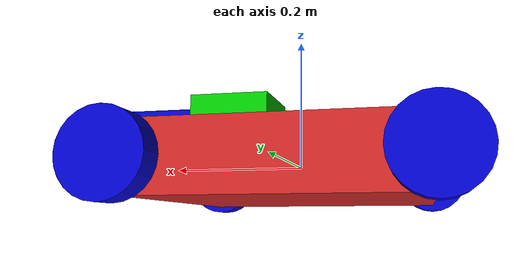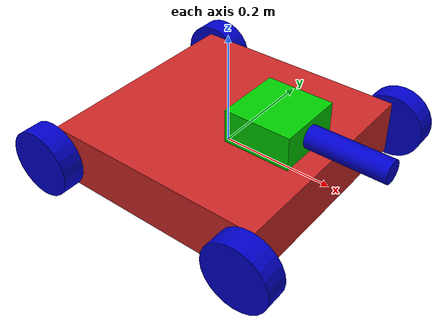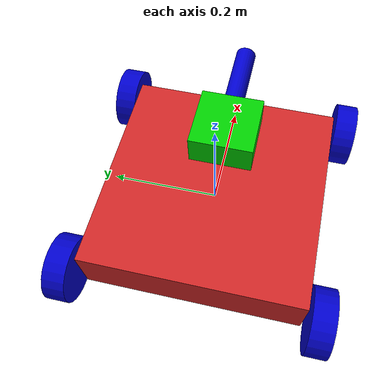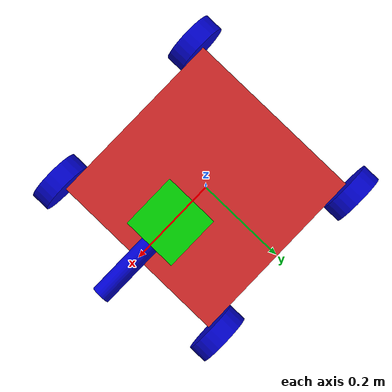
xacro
<?xml version="1.0"?>
<robot xmlns:xacro="http://www.ros.org/wiki/xacro" name="mobile_robot">

<!-- Base Link -->
<link name="base_link">
</link>

<xacro:property name="height" value="0.4" />
<xacro:property name="width" value="0.4" />
<xacro:property name="depth" value="0.1" />

<!--Chassis-->
<link name="chassis">
  <visual>
    <geometry>
      <box size="${height} ${width} ${depth}"/>
    </geometry>
  </visual>
  <collision>
    <geometry>
      <box size="${height} ${width} ${depth}"/>
    </geometry>
  </collision>
  <inertial>
    <mass value="1.0"/> <!-- [kg] -->
    <inertia ixx="0.014167" ixy="0.0" ixz="0.0" iyy="0.026667" iyz="0.0" izz="0.014167"/>
  </inertial>
</link>

<gazebo reference="chassis">
  <material>Gazebo/Red</material>
</gazebo>

<joint name="chassis_joint" type="fixed">
  <parent link="base_link"/>
  <child link="chassis"/>
</joint>

<material name="blue">
    <color rgba="0 0 0.8 1"/>
</material>

<xacro:property name="wheel_height" value="0.04" />
<xacro:property name="wheel_radius" value="0.06" />

<!-- Wheel macro-->
<xacro:macro name="wheel" params="name reflect_x reflect_y reflect_r reflect_axis">

  <!-- Wheel link -->
	<link name="${name}_wheel">
    <visual>
      <geometry>
        <cylinder length="${wheel_height}" radius="${wheel_radius}"/>
      </geometry>
      <material name="blue"/>
    </visual>
    <collision>
      <geometry>
        <cylinder length="${wheel_height}" radius="${wheel_radius}"/>
      </geometry>
    </collision>
    <inertial>
      <mass value="0.3"/>  <!-- [kg] -->
      <inertia ixx="0.00031" ixy="0.0" ixz="0.0" iyy="0.00031" iyz="0.0" izz="0.00054"/>
    </inertial>
  </link>

  <!-- Wheel joint -->
  <joint name="${name}_wheel_joint" type="continuous">
    <parent link="chassis"/>
    <child link="${name}_wheel"/>
    <origin xyz="${reflect_x*height/2} ${reflect_y*(width/2+0.025)} 0" rpy="${reflect_r*1.5707} 0 0"/>
    <axis xyz="0 0 ${reflect_axis}"/>
  </joint>

  <!-- Adding transmission to wheels -->
  <transmission name="${name}_wheel_trans">
    <type>transmission_interface/SimpleTransmission</type>
    <actuator name="${name}_wheel_motor">
      <mechanicalReduction>1</mechanicalReduction>
    </actuator>
    <joint name="${name}_wheel_joint">
      <hardwareInterface>hardware_interface/VelocityJointInterface</hardwareInterface>
    </joint>
  </transmission>

  <gazebo reference="${name}_wheel">
    <material>Gazebo/Blue</material>
  </gazebo>

</xacro:macro>

<!-- Wheels definition-->
<xacro:wheel name="front_right" reflect_x="1" reflect_y="-1" reflect_r="1" reflect_axis="-1"/>
<xacro:wheel name="front_left" reflect_x="1" reflect_y="1" reflect_r="-1" reflect_axis="1"/>
<xacro:wheel name="rear_right" reflect_x="-1" reflect_y="-1" reflect_r="1" reflect_axis="-1"/>
<xacro:wheel name="rear_left" reflect_x="-1" reflect_y="1" reflect_r="-1" reflect_axis="1"/>

<!-- Head box -->
<material name="green">
  <color rgba="0 0.8 0 1"/>
</material>

<link name="head">
  <visual>
    <geometry>
      <box size="0.12 0.12 0.12"/>
    </geometry>
    <material name="green"/>
  </visual>
</link>

<joint name="head_joint" type="fixed">
  <parent link="chassis"/>
  <child link="head"/>
  <origin xyz="0.1 0 0.05" rpy="0 0 0"/>
</joint>

<gazebo reference="head">
  <material>Gazebo/Green</material>
</gazebo>

<!--gun-->
    <link name="gun">
     <visual>
       <geometry>
         <cylinder length="0.2" radius="0.02"/>
       </geometry>
       <material name="blue"/>
     </visual>
   </link>

   <joint name="gun_joint" type="fixed">
      <parent link="head"/>
      <child link="gun"/>
      <origin xyz="0.1 0 0.03" rpy="0 1.5707 0"/>
   </joint>

<gazebo reference="gun">
  <material>Gazebo/Blue</material>
</gazebo>

<!-- Link Gazebo and ROS -->
<gazebo>
  <plugin name="gazebo_ros_control" filename="libgazebo_ros_control.so">
    <robotNamespace>/</robotNamespace>
  </plugin>
</gazebo>

</robot>
